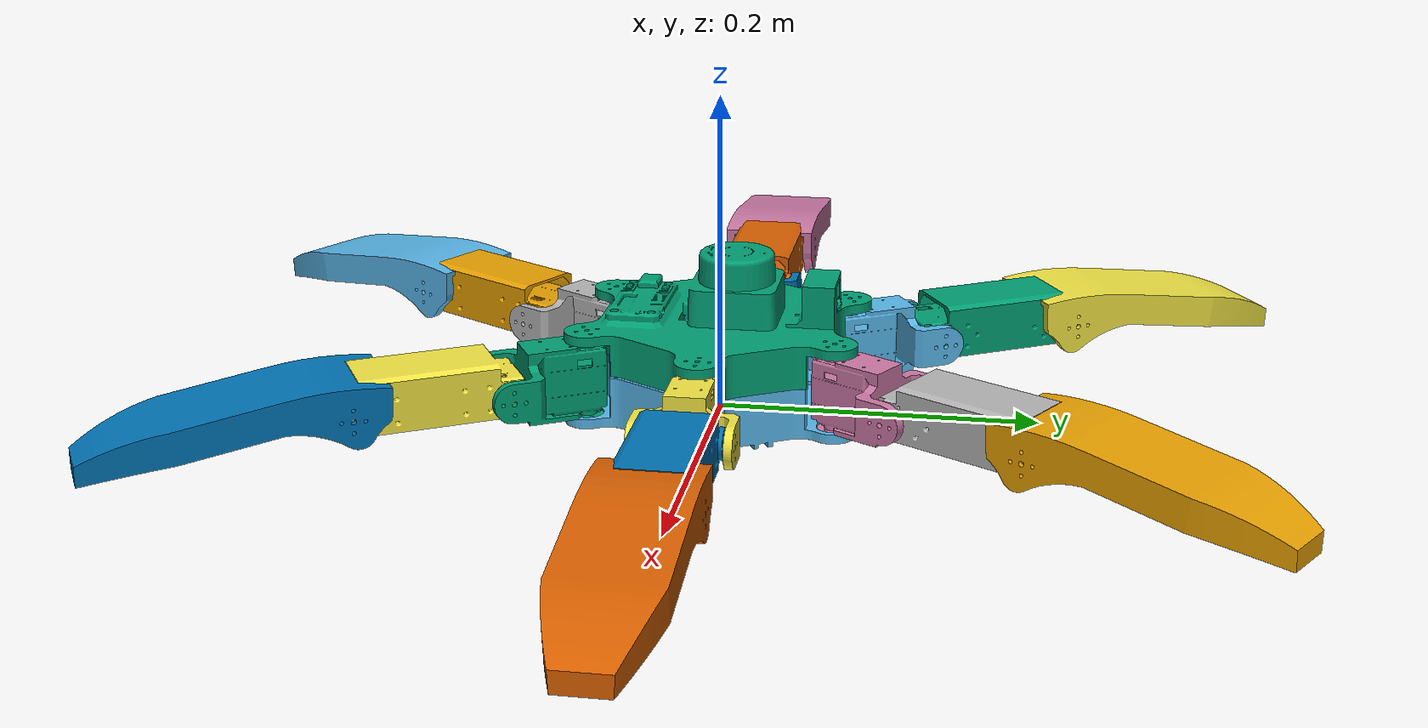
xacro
<?xml version="1.0"?>
<robot xmlns:xacro="https://wiki.ros.org/xacro" name="hexapod">

    <link name="base_footprint"></link>

    <link name="base_link">

        <inertial>
            <origin xyz="0.023017229120898014 -0.08464530203925047 0.0008889846005406454" rpy="0.0 -0.0 1.3564505168326057e-48" />
            <mass value="1.2443830690052136" />
            <inertia ixx="0.0023689215025013517" iyy="0.002416594595253303" izz="0.004668882923273096" ixy="2.5477598085071404e-05" iyz="-2.859342323275442e-07" ixz="-1.8427596792821278e-07" />
        </inertial>

        <visual>
            <origin xyz="0 0 0" rpy="0 0 0"></origin>
            <geometry>
                <mesh filename="package://hexapod_description/meshes/base_v1.STL" scale="0.001 0.001 0.001"></mesh>
            </geometry>
        </visual>

        <collision>
            <origin xyz="0 0 0" rpy="0 0 0"></origin>
            <geometry>
                <mesh filename="package://hexapod_description/meshes/base_v1.STL" scale="0.001 0.001 0.001"></mesh>
            </geometry>
        </collision>

    </link>

    <joint name="base_joint" type="fixed">
        <parent link="base_footprint"></parent>
        <child link="base_link"></child>
        <origin xyz="0 0 0" rpy="0 0 0"></origin>
    </joint>

    <link name="top_cover">

        <inertial>
            <origin xyz="0.023017229120898014 -0.08464530203925047 0.0008889846005406454" rpy="0.0 -0.0 1.3564505168326057e-48" />
            <mass value="1.2443830690052136" />
            <inertia ixx="0.0023689215025013517" iyy="0.002416594595253303" izz="0.004668882923273096" ixy="2.5477598085071404e-05" iyz="-2.859342323275442e-07" ixz="-1.8427596792821278e-07" />
        </inertial>

        <visual>
            <origin xyz="0 0 0" rpy="0 0 0"></origin>
            <geometry>
                <mesh filename="package://hexapod_description/meshes/Top_cover_v1.STL" scale="0.001 0.001 -0.001"></mesh>
            </geometry>
        </visual>

        <collision>
            <origin xyz="0 0 0" rpy="0 0 0"></origin>
            <geometry>
                <mesh filename="package://hexapod_description/meshes/Top_cover_v1.STL" scale="0.001 0.001 -0.001"></mesh>
            </geometry>
        </collision>
    </link>

    <joint name="top_cover_joint" type="fixed">
        <parent link="base_link"></parent>
        <child link="top_cover"></child>
        <origin xyz="0 0 0.0553" rpy="0 0 0"></origin>
    </joint>

    <!--LINK 1-->

    <link name="leg_1_link_1">
        <inertial>
            <origin xyz="-0.037949941928318846 -0.09744132570425558 0.03883429888507256" rpy="0.0 0.0 0.0" />
            <mass value="0.36914291072258437" />
            <inertia ixx="0.00016583494987659382" iyy="0.00012963751307110523" izz="0.00018444108683002687" ixy="-3.1348156946775304e-05" iyz="4.360609764316677e-06" ixz="2.517892227090198e-06" />
        </inertial>
        <visual>
            <origin xyz="0 0 0" rpy="0 0 0"></origin>
            <geometry>
                <mesh filename="package://hexapod_description/meshes/Link1_v1.STL" scale="-0.001 0.001 0.001"></mesh>
            </geometry>
        </visual>

        <collision>
            <origin xyz="0 0 0" rpy="0 0 0"></origin>
            <geometry>
                <mesh filename="package://hexapod_description/meshes/Link1_v1.STL" scale="-0.001 0.001 0.001"></mesh>
            </geometry>
        </collision>

    </link>

    <joint name="leg_1_link_1_joint" type="revolute">
        <parent link="base_link"></parent>
        <child link="leg_1_link_1"></child>
        <origin xyz="0.0884 0 0.056003" rpy="0 0 0"></origin>
        <axis xyz="0 0 1"></axis>
        <limit effort="100.0" lower="-0.7854" upper="0.7854" velocity="1.0"></limit>
    </joint>

    <link name="leg_1_link_2">
        <inertial>
            <origin xyz="0.03956033205668474 -0.0026359793082563333 -0.037825768790633305" rpy="0.0 8.511212647632786e-31 0.0" />
            <mass value="0.5870673755794086" />
            <inertia ixx="0.0002049978562715309" iyy="0.0008928463308917646" izz="0.0007745880375809385" ixy="6.572602663475909e-07" iyz="2.4549193540669483e-06" ixz="0.00016446227358901872" />
        </inertial>
        <visual>
            <origin xyz="0 0 0" rpy="0 0 0"></origin>
            <geometry>
                <mesh filename="package://hexapod_description/meshes/Link2_v1.STL" scale="-0.001 0.001 0.001"></mesh>
            </geometry>
        </visual>

        <collision>
            <origin xyz="0 0 0" rpy="0 0 0"></origin>
            <geometry>
                <mesh filename="package://hexapod_description/meshes/Link2_v1.STL" scale="-0.001 0.001 0.001"></mesh>
            </geometry>
        </collision>

    </link>

    <joint name="leg_1_link_2_joint" type="revolute">
        <parent link="leg_1_link_1"></parent>
        <child link="leg_1_link_2"></child>
        <origin xyz="0.055 0 -0.0230" rpy="0 0 -1.5708"></origin>
        <axis xyz="1 0 0"></axis>
        <limit effort="100.0" lower="-0.7854" upper="0.7854" velocity="1.0"></limit>
    </joint>

    <link name="leg_1_link_3">
        <inertial>
            <origin xyz="0.06853528018735762 0.005084938941100754 -0.04720409525089698" rpy="0.0 1.2890988334177766e-30 0.0" />
            <mass value="1.0486562054964048" />
            <inertia ixx="0.0005905740206741282" iyy="0.002729452593835599" izz="0.0022871203346311766" ixy="0.00020547467588970537" iyz="-5.5925273058158886e-05" ixz="0.00047479762826372745" />
        </inertial>
        <visual>
            <origin xyz="0 0 0" rpy="0 0 0"></origin>
            <geometry>
                <mesh filename="package://hexapod_description/meshes/Link3_v1.STL" scale="-0.001 0.001 -0.001"></mesh>
            </geometry>
        </visual>

        <collision>
            <origin xyz="0 0 0" rpy="0 0 0"></origin>
            <geometry>
                <mesh filename="package://hexapod_description/meshes/Link3_v1.STL" scale="-0.001 0.001 -0.001"></mesh>
            </geometry>
        </collision>

    </link>

    <joint name="leg_1_link_3_joint" type="revolute">
        <parent link="leg_1_link_2"></parent>
        <child link="leg_1_link_3"></child>
        <origin xyz="0 0.096 0" rpy="0 0 1.5708"></origin>
        <axis xyz="0 1 0"></axis>
        <limit effort="100.0" lower="0" upper="2.35619" velocity="1.0"></limit>
    </joint>

    <link name="leg_2_link_1">
        <inertial>
            <origin xyz="-0.037949941928318846 -0.09744132570425558 0.03883429888507256" rpy="0.0 0.0 0.0" />
            <mass value="0.36914291072258437" />
            <inertia ixx="0.00016583494987659382" iyy="0.00012963751307110523" izz="0.00018444108683002687" ixy="-3.1348156946775304e-05" iyz="4.360609764316677e-06" ixz="2.517892227090198e-06" />
        </inertial>
        <visual>
            <origin xyz="0 0 0" rpy="0 0 0"></origin>
            <geometry>
                <mesh filename="package://hexapod_description/meshes/Link1_v1.STL" scale="-0.001 0.001 0.001"></mesh>
            </geometry>
        </visual>

        <collision>
            <origin xyz="0 0 0" rpy="0 0 0"></origin>
            <geometry>
                <mesh filename="package://hexapod_description/meshes/Link1_v1.STL" scale="-0.001 0.001 0.001"></mesh>
            </geometry>
        </collision>

    </link>

    <joint name="leg_2_link_1_joint" type="revolute">
        <parent link="base_link"></parent>
        <child link="leg_2_link_1"></child>
        <origin xyz="0.04359 0.07621 0.056003" rpy="0 0 1.0472"></origin>
        <axis xyz="0 0 1"></axis>
        <limit effort="100.0" lower="-0.7854" upper="0.7854" velocity="1.0"></limit>
    </joint>

    <link name="leg_2_link_2">
        <inertial>
            <origin xyz="0.03956033205668474 -0.0026359793082563333 -0.037825768790633305" rpy="0.0 8.511212647632786e-31 0.0" />
            <mass value="0.5870673755794086" />
            <inertia ixx="0.0002049978562715309" iyy="0.0008928463308917646" izz="0.0007745880375809385" ixy="6.572602663475909e-07" iyz="2.4549193540669483e-06" ixz="0.00016446227358901872" />
        </inertial>
        <visual>
            <origin xyz="0 0 0" rpy="0 0 0"></origin>
            <geometry>
                <mesh filename="package://hexapod_description/meshes/Link2_v1.STL" scale="-0.001 0.001 0.001"></mesh>
            </geometry>
        </visual>

        <collision>
            <origin xyz="0 0 0" rpy="0 0 0"></origin>
            <geometry>
                <mesh filename="package://hexapod_description/meshes/Link2_v1.STL" scale="-0.001 0.001 0.001"></mesh>
            </geometry>
        </collision>

    </link>

    <joint name="leg_2_link_2_joint" type="revolute">
        <parent link="leg_2_link_1"></parent>
        <child link="leg_2_link_2"></child>
        <origin xyz="0.055 0 -0.0230" rpy="0 0 -1.5708"></origin>
        <axis xyz="1 0 0"></axis>
        <limit effort="100.0" lower="-0.7854" upper="0.7854" velocity="1.0"></limit>
    </joint>

    <link name="leg_2_link_3">
        <inertial>
            <origin xyz="0.06853528018735762 0.005084938941100754 -0.04720409525089698" rpy="0.0 1.2890988334177766e-30 0.0" />
            <mass value="1.0486562054964048" />
            <inertia ixx="0.0005905740206741282" iyy="0.002729452593835599" izz="0.0022871203346311766" ixy="0.00020547467588970537" iyz="-5.5925273058158886e-05" ixz="0.00047479762826372745" />
        </inertial>
        <visual>
            <origin xyz="0 0 0" rpy="0 0 0"></origin>
            <geometry>
                <mesh filename="package://hexapod_description/meshes/Link3_v1.STL" scale="-0.001 0.001 -0.001"></mesh>
            </geometry>
        </visual>

        <collision>
            <origin xyz="0 0 0" rpy="0 0 0"></origin>
            <geometry>
                <mesh filename="package://hexapod_description/meshes/Link3_v1.STL" scale="-0.001 0.001 -0.001"></mesh>
            </geometry>
        </collision>

    </link>

    <joint name="leg_2_link_3_joint" type="revolute">
        <parent link="leg_2_link_2"></parent>
        <child link="leg_2_link_3"></child>
        <origin xyz="0 0.096 0" rpy="0 0 1.5708"></origin>
        <axis xyz="0 1 0"></axis>
        <limit effort="100.0" lower="0" upper="2.35619" velocity="1.0"></limit>
    </joint>

    <link name="leg_3_link_1">
        <inertial>
            <origin xyz="-0.037949941928318846 -0.09744132570425558 0.03883429888507256" rpy="0.0 0.0 0.0" />
            <mass value="0.36914291072258437" />
            <inertia ixx="0.00016583494987659382" iyy="0.00012963751307110523" izz="0.00018444108683002687" ixy="-3.1348156946775304e-05" iyz="4.360609764316677e-06" ixz="2.517892227090198e-06" />
        </inertial>
        <visual>
            <origin xyz="0 0 0" rpy="0 0 0"></origin>
            <geometry>
                <mesh filename="package://hexapod_description/meshes/Link1_v1.STL" scale="-0.001 0.001 0.001"></mesh>
            </geometry>
        </visual>

        <collision>
            <origin xyz="0 0 0" rpy="0 0 0"></origin>
            <geometry>
                <mesh filename="package://hexapod_description/meshes/Link1_v1.STL" scale="-0.001 0.001 0.001"></mesh>
            </geometry>
        </collision>

    </link>

    <joint name="leg_3_link_1_joint" type="revolute">
        <parent link="base_link"></parent>
        <child link="leg_3_link_1"></child>
        <origin xyz="-0.04359 0.07621 0.056003" rpy="0 0 2.094399"></origin>
        <axis xyz="0 0 1"></axis>
        <limit effort="100.0" lower="-0.7854" upper="0.7854" velocity="1.0"></limit>
    </joint>

    <link name="leg_3_link_2">
        <inertial>
            <origin xyz="0.03956033205668474 -0.0026359793082563333 -0.037825768790633305" rpy="0.0 8.511212647632786e-31 0.0" />
            <mass value="0.5870673755794086" />
            <inertia ixx="0.0002049978562715309" iyy="0.0008928463308917646" izz="0.0007745880375809385" ixy="6.572602663475909e-07" iyz="2.4549193540669483e-06" ixz="0.00016446227358901872" />
        </inertial>
        <visual>
            <origin xyz="0 0 0" rpy="0 0 0"></origin>
            <geometry>
                <mesh filename="package://hexapod_description/meshes/Link2_v1.STL" scale="-0.001 0.001 0.001"></mesh>
            </geometry>
        </visual>

        <collision>
            <origin xyz="0 0 0" rpy="0 0 0"></origin>
            <geometry>
                <mesh filename="package://hexapod_description/meshes/Link2_v1.STL" scale="-0.001 0.001 0.001"></mesh>
            </geometry>
        </collision>

    </link>

    <joint name="leg_3_link_2_joint" type="revolute">
        <parent link="leg_3_link_1"></parent>
        <child link="leg_3_link_2"></child>
        <origin xyz="0.055 0 -0.0230" rpy="0 0 -1.5708"></origin>
        <axis xyz="1 0 0"></axis>
        <limit effort="100.0" lower="-0.7854" upper="0.7854" velocity="1.0"></limit>
    </joint>

    <link name="leg_3_link_3">
        <inertial>
            <origin xyz="0.06853528018735762 0.005084938941100754 -0.04720409525089698" rpy="0.0 1.2890988334177766e-30 0.0" />
            <mass value="1.0486562054964048" />
            <inertia ixx="0.0005905740206741282" iyy="0.002729452593835599" izz="0.0022871203346311766" ixy="0.00020547467588970537" iyz="-5.5925273058158886e-05" ixz="0.00047479762826372745" />
        </inertial>
        <visual>
            <origin xyz="0 0 0" rpy="0 0 0"></origin>
            <geometry>
                <mesh filename="package://hexapod_description/meshes/Link3_v1.STL" scale="-0.001 0.001 -0.001"></mesh>
            </geometry>
        </visual>

        <collision>
            <origin xyz="0 0 0" rpy="0 0 0"></origin>
            <geometry>
                <mesh filename="package://hexapod_description/meshes/Link3_v1.STL" scale="-0.001 0.001 -0.001"></mesh>
            </geometry>
        </collision>

    </link>

    <joint name="leg_3_link_3_joint" type="revolute">
        <parent link="leg_3_link_2"></parent>
        <child link="leg_3_link_3"></child>
        <origin xyz="0 0.096 0" rpy="0 0 1.5708"></origin>
        <axis xyz="0 1 0"></axis>
        <limit effort="100.0" lower="0" upper="2.35619" velocity="1.0"></limit>
    </joint>

    <link name="leg_4_link_1">
        <inertial>
            <origin xyz="-0.037949941928318846 -0.09744132570425558 0.03883429888507256" rpy="0.0 0.0 0.0" />
            <mass value="0.36914291072258437" />
            <inertia ixx="0.00016583494987659382" iyy="0.00012963751307110523" izz="0.00018444108683002687" ixy="-3.1348156946775304e-05" iyz="4.360609764316677e-06" ixz="2.517892227090198e-06" />
        </inertial>
        <visual>
            <origin xyz="0 0 0" rpy="0 0 0"></origin>
            <geometry>
                <mesh filename="package://hexapod_description/meshes/Link1_v1.STL" scale="0.001 0.001 0.001"></mesh>
            </geometry>
        </visual>

        <collision>
            <origin xyz="0 0 0" rpy="0 0 0"></origin>
            <geometry>
                <mesh filename="package://hexapod_description/meshes/Link1_v1.STL" scale="0.001 0.001 0.001"></mesh>
            </geometry>
        </collision>

    </link>

    <joint name="leg_4_link_1_joint" type="revolute">
        <parent link="base_link"></parent>
        <child link="leg_4_link_1"></child>
        <origin xyz="-0.0884 0 0.056003" rpy="0 0 0"></origin>
        <axis xyz="0 0 1"></axis>
        <limit effort="100.0" lower="-0.7854" upper="0.7854" velocity="1.0"></limit>
    </joint>

    <link name="leg_4_link_2">
        <inertial>
            <origin xyz="0.03956033205668474 -0.0026359793082563333 -0.037825768790633305" rpy="0.0 8.511212647632786e-31 0.0" />
            <mass value="0.5870673755794086" />
            <inertia ixx="0.0002049978562715309" iyy="0.0008928463308917646" izz="0.0007745880375809385" ixy="6.572602663475909e-07" iyz="2.4549193540669483e-06" ixz="0.00016446227358901872" />
        </inertial>
        <visual>
            <origin xyz="0 0 0" rpy="0 0 0"></origin>
            <geometry>
                <mesh filename="package://hexapod_description/meshes/Link2_v1.STL" scale="0.001 0.001 0.001"></mesh>
            </geometry>
        </visual>

        <collision>
            <origin xyz="0 0 0" rpy="0 0 0"></origin>
            <geometry>
                <mesh filename="package://hexapod_description/meshes/Link2_v1.STL" scale="0.001 0.001 0.001"></mesh>
            </geometry>
        </collision>

    </link>

    <joint name="leg_4_link_2_joint" type="revolute">
        <parent link="leg_4_link_1"></parent>
        <child link="leg_4_link_2"></child>
        <origin xyz="-0.055 0 -0.0230" rpy="0 0 1.5708"></origin>
        <axis xyz="1 0 0"></axis>
        <limit effort="100.0" lower="-0.7854" upper="0.7854" velocity="1.0"></limit>
    </joint>

    <link name="leg_4_link_3">
        <inertial>
            <origin xyz="0.06853528018735762 0.005084938941100754 -0.04720409525089698" rpy="0.0 1.2890988334177766e-30 0.0" />
            <mass value="1.0486562054964048" />
            <inertia ixx="0.0005905740206741282" iyy="0.002729452593835599" izz="0.0022871203346311766" ixy="0.00020547467588970537" iyz="-5.5925273058158886e-05" ixz="0.00047479762826372745" />
        </inertial>
        <visual>
            <origin xyz="0 0 0" rpy="0 0 0"></origin>
            <geometry>
                <mesh filename="package://hexapod_description/meshes/Link3_v1.STL" scale="-0.001 0.001 -0.001"></mesh>
            </geometry>
        </visual>

        <collision>
            <origin xyz="0 0 0" rpy="0 0 0"></origin>
            <geometry>
                <mesh filename="package://hexapod_description/meshes/Link3_v1.STL" scale="-0.001 0.001 -0.001"></mesh>
            </geometry>
        </collision>

    </link>

    <joint name="leg_4_link_3_joint" type="revolute">
        <parent link="leg_4_link_2"></parent>
        <child link="leg_4_link_3"></child>
        <origin xyz="0 0.096 0" rpy="0 0 1.5708"></origin>
        <axis xyz="0 1 0"></axis>
        <limit effort="100.0" lower="0" upper="2.35619" velocity="1.0"></limit>
    </joint>

    <link name="leg_5_link_1">
        <inertial>
            <origin xyz="-0.037949941928318846 -0.09744132570425558 0.03883429888507256" rpy="0.0 0.0 0.0" />
            <mass value="0.36914291072258437" />
            <inertia ixx="0.00016583494987659382" iyy="0.00012963751307110523" izz="0.00018444108683002687" ixy="-3.1348156946775304e-05" iyz="4.360609764316677e-06" ixz="2.517892227090198e-06" />
        </inertial>
        <visual>
            <origin xyz="0 0 0" rpy="0 0 0"></origin>
            <geometry>
                <mesh filename="package://hexapod_description/meshes/Link1_v1.STL" scale="-0.001 0.001 0.001"></mesh>
            </geometry>
        </visual>

        <collision>
            <origin xyz="0 0 0" rpy="0 0 0"></origin>
            <geometry>
                <mesh filename="package://hexapod_description/meshes/Link1_v1.STL" scale="-0.001 0.001 0.001"></mesh>
            </geometry>
        </collision>

    </link>

    <joint name="leg_5_link_1_joint" type="revolute">
        <parent link="base_link"></parent>
        <child link="leg_5_link_1"></child>
        <origin xyz="-0.04359 -0.07621 0.056003" rpy="0 0 -2.094399"></origin>
        <axis xyz="0 0 1"></axis>
        <limit effort="100.0" lower="-0.7854" upper="0.7854" velocity="1.0"></limit>
    </joint>

    <link name="leg_5_link_2">
        <inertial>
            <origin xyz="0.03956033205668474 -0.0026359793082563333 -0.037825768790633305" rpy="0.0 8.511212647632786e-31 0.0" />
            <mass value="0.5870673755794086" />
            <inertia ixx="0.0002049978562715309" iyy="0.0008928463308917646" izz="0.0007745880375809385" ixy="6.572602663475909e-07" iyz="2.4549193540669483e-06" ixz="0.00016446227358901872" />
        </inertial>
        <visual>
            <origin xyz="0 0 0" rpy="0 0 0"></origin>
            <geometry>
                <mesh filename="package://hexapod_description/meshes/Link2_v1.STL" scale="-0.001 0.001 0.001"></mesh>
            </geometry>
        </visual>

        <collision>
            <origin xyz="0 0 0" rpy="0 0 0"></origin>
            <geometry>
                <mesh filename="package://hexapod_description/meshes/Link2_v1.STL" scale="-0.001 0.001 0.001"></mesh>
            </geometry>
        </collision>

    </link>

    <joint name="leg_5_link_2_joint" type="revolute">
        <parent link="leg_5_link_1"></parent>
        <child link="leg_5_link_2"></child>
        <origin xyz="0.055 0 -0.0230" rpy="0 0 -1.5708"></origin>
        <axis xyz="1 0 0"></axis>
        <limit effort="100.0" lower="-0.7854" upper="0.7854" velocity="1.0"></limit>
    </joint>

    <link name="leg_5_link_3">
        <inertial>
            <origin xyz="0.06853528018735762 0.005084938941100754 -0.04720409525089698" rpy="0.0 1.2890988334177766e-30 0.0" />
            <mass value="1.0486562054964048" />
            <inertia ixx="0.0005905740206741282" iyy="0.002729452593835599" izz="0.0022871203346311766" ixy="0.00020547467588970537" iyz="-5.5925273058158886e-05" ixz="0.00047479762826372745" />
        </inertial>
        <visual>
            <origin xyz="0 0 0" rpy="0 0 0"></origin>
            <geometry>
                <mesh filename="package://hexapod_description/meshes/Link3_v1.STL" scale="-0.001 0.001 -0.001"></mesh>
            </geometry>
        </visual>

        <collision>
            <origin xyz="0 0 0" rpy="0 0 0"></origin>
            <geometry>
                <mesh filename="package://hexapod_description/meshes/Link3_v1.STL" scale="-0.001 0.001 -0.001"></mesh>
            </geometry>
        </collision>

    </link>

    <joint name="leg_5_link_3_joint" type="revolute">
        <parent link="leg_5_link_2"></parent>
        <child link="leg_5_link_3"></child>
        <origin xyz="0 0.096 0" rpy="0 0 1.5708"></origin>
        <axis xyz="0 1 0"></axis>
        <limit effort="100.0" lower="0" upper="2.35619" velocity="1.0"></limit>
    </joint>

    <link name="leg_6_link_1">
        <inertial>
            <origin xyz="-0.037949941928318846 -0.09744132570425558 0.03883429888507256" rpy="0.0 0.0 0.0" />
            <mass value="0.36914291072258437" />
            <inertia ixx="0.00016583494987659382" iyy="0.00012963751307110523" izz="0.00018444108683002687" ixy="-3.1348156946775304e-05" iyz="4.360609764316677e-06" ixz="2.517892227090198e-06" />
        </inertial>
        <visual>
            <origin xyz="0 0 0" rpy="0 0 0"></origin>
            <geometry>
                <mesh filename="package://hexapod_description/meshes/Link1_v1.STL" scale="-0.001 0.001 0.001"></mesh>
            </geometry>
        </visual>

        <collision>
            <origin xyz="0 0 0" rpy="0 0 0"></origin>
            <geometry>
                <mesh filename="package://hexapod_description/meshes/Link1_v1.STL" scale="-0.001 0.001 0.001"></mesh>
            </geometry>
        </collision>

    </link>

    <joint name="leg_6_link_1_joint" type="revolute">
        <parent link="base_link"></parent>
        <child link="leg_6_link_1"></child>
        <origin xyz="0.04359 -0.07621 0.056003" rpy="0 0 -1.0472"></origin>
        <axis xyz="0 0 1"></axis>
        <limit effort="100.0" lower="-0.7854" upper="0.7854" velocity="1.0"></limit>
    </joint>

    <link name="leg_6_link_2">
        <inertial>
            <origin xyz="0.03956033205668474 -0.0026359793082563333 -0.037825768790633305" rpy="0.0 8.511212647632786e-31 0.0" />
            <mass value="0.5870673755794086" />
            <inertia ixx="0.0002049978562715309" iyy="0.0008928463308917646" izz="0.0007745880375809385" ixy="6.572602663475909e-07" iyz="2.4549193540669483e-06" ixz="0.00016446227358901872" />
        </inertial>
        <visual>
            <origin xyz="0 0 0" rpy="0 0 0"></origin>
            <geometry>
                <mesh filename="package://hexapod_description/meshes/Link2_v1.STL" scale="-0.001 0.001 0.001"></mesh>
            </geometry>
        </visual>

        <collision>
            <origin xyz="0 0 0" rpy="0 0 0"></origin>
            <geometry>
                <mesh filename="package://hexapod_description/meshes/Link2_v1.STL" scale="-0.001 0.001 0.001"></mesh>
            </geometry>
        </collision>

    </link>

    <joint name="leg_6_link_2_joint" type="revolute">
        <parent link="leg_6_link_1"></parent>
        <child link="leg_6_link_2"></child>
        <origin xyz="0.055 0 -0.0230" rpy="0 0 -1.5708"></origin>
        <axis xyz="1 0 0"></axis>
        <limit effort="100.0" lower="-0.7854" upper="0.7854" velocity="1.0"></limit>
    </joint>

    <link name="leg_6_link_3">
        <inertial>
            <origin xyz="0.06853528018735762 0.005084938941100754 -0.04720409525089698" rpy="0.0 1.2890988334177766e-30 0.0" />
            <mass value="1.0486562054964048" />
            <inertia ixx="0.0005905740206741282" iyy="0.002729452593835599" izz="0.0022871203346311766" ixy="0.00020547467588970537" iyz="-5.5925273058158886e-05" ixz="0.00047479762826372745" />
        </inertial>
        <visual>
            <origin xyz="0 0 0" rpy="0 0 0"></origin>
            <geometry>
                <mesh filename="package://hexapod_description/meshes/Link3_v1.STL" scale="-0.001 0.001 -0.001"></mesh>
            </geometry>
        </visual>

        <collision>
            <origin xyz="0 0 0" rpy="0 0 0"></origin>
            <geometry>
                <mesh filename="package://hexapod_description/meshes/Link3_v1.STL" scale="-0.001 0.001 -0.001"></mesh>
            </geometry>
        </collision>

    </link>

    <joint name="leg_6_link_3_joint" type="revolute">
        <parent link="leg_6_link_2"></parent>
        <child link="leg_6_link_3"></child>
        <origin xyz="0 0.096 0" rpy="0 0 1.5708"></origin>
        <axis xyz="0 1 0"></axis>
        <limit effort="100.0" lower="0" upper="2.35619" velocity="1.0"></limit>
    </joint>

    <!-- gazebo references-->

    <gazebo reference="leg_1_link_1">
        <mu1>1000000000000000000000000000000.0</mu1>
        <mu2>1000000000000000000000000000000.0</mu2>
        <kp>1000000000000000000000000000000.0</kp>
        <kd>10.0</kd>
    </gazebo>
    <gazebo reference="leg_1_link_2">
        <mu1>1000000000000000000000000000000.0</mu1>
        <mu2>1000000000000000000000000000000.0</mu2>
        <kp>1000000000000000000000000000000.0</kp>
        <kd>10.0</kd>
    </gazebo>
    <gazebo reference="leg_1_link_3">
        <mu1>1000000000000000000000000000000.0</mu1>
        <mu2>1000000000000000000000000000000.0</mu2>
        <kp>1000000000000000000000000000000.0</kp>
        <kd>10.0</kd>
    </gazebo>
    <gazebo reference="leg_2_link_1">
        <mu1>1000000000000000000000000000000.0</mu1>
        <mu2>1000000000000000000000000000000.0</mu2>
        <kp>1000000000000000000000000000000.0</kp>
        <kd>10.0</kd>
    </gazebo>
    <gazebo reference="leg_2_link_2">
        <mu1>1000000000000000000000000000000.0</mu1>
        <mu2>1000000000000000000000000000000.0</mu2>
        <kp>1000000000000000000000000000000.0</kp>
        <kd>10.0</kd>
    </gazebo>
    <gazebo reference="leg_2_link_3">
        <mu1>1000000000000000000000000000000.0</mu1>
        <mu2>1000000000000000000000000000000.0</mu2>
        <kp>1000000000000000000000000000000.0</kp>
        <kd>10.0</kd>
    </gazebo>
    <gazebo reference="leg_3_link_1">
        <mu1>1000000000000000000000000000000.0</mu1>
        <mu2>1000000000000000000000000000000.0</mu2>
        <kp>1000000000000000000000000000000.0</kp>
        <kd>10.0</kd>
    </gazebo>
    <gazebo reference="leg_3_link_2">
        <mu1>1000000000000000000000000000000.0</mu1>
        <mu2>1000000000000000000000000000000.0</mu2>
        <kp>1000000000000000000000000000000.0</kp>
        <kd>10.0</kd>
    </gazebo>
    <gazebo reference="leg_3_link_3">
        <mu1>1000000000000000000000000000000.0</mu1>
        <mu2>1000000000000000000000000000000.0</mu2>
        <kp>1000000000000000000000000000000.0</kp>
        <kd>10.0</kd>
    </gazebo>
    <gazebo reference="leg_4_link_1">
        <mu1>1000000000000000000000000000000.0</mu1>
        <mu2>1000000000000000000000000000000.0</mu2>
        <kp>1000000000000000000000000000000.0</kp>
        <kd>10.0</kd>
    </gazebo>
    <gazebo reference="leg_4_link_2">
        <mu1>1000000000000000000000000000000.0</mu1>
        <mu2>1000000000000000000000000000000.0</mu2>
        <kp>1000000000000000000000000000000.0</kp>
        <kd>10.0</kd>
    </gazebo>
    <gazebo reference="leg_4_link_3">
        <mu1>1000000000000000000000000000000.0</mu1>
        <mu2>1000000000000000000000000000000.0</mu2>
        <kp>1000000000000000000000000000000.0</kp>
        <kd>10.0</kd>
    </gazebo>
    <gazebo reference="leg_5_link_1">
        <mu1>1000000000000000000000000000000.0</mu1>
        <mu2>1000000000000000000000000000000.0</mu2>
        <kp>1000000000000000000000000000000.0</kp>
        <kd>10.0</kd>
    </gazebo>
    <gazebo reference="leg_5_link_2">
        <mu1>1000000000000000000000000000000.0</mu1>
        <mu2>1000000000000000000000000000000.0</mu2>
        <kp>1000000000000000000000000000000.0</kp>
        <kd>10.0</kd>
    </gazebo>
    <gazebo reference="leg_5_link_3">
        <mu1>1000000000000000000000000000000.0</mu1>
        <mu2>1000000000000000000000000000000.0</mu2>
        <kp>1000000000000000000000000000000.0</kp>
        <kd>10.0</kd>
    </gazebo>
    <gazebo reference="leg_6_link_1">
        <mu1>1000000000000000000000000000000.0</mu1>
        <mu2>1000000000000000000000000000000.0</mu2>
        <kp>1000000000000000000000000000000.0</kp>
        <kd>10.0</kd>
    </gazebo>
    <gazebo reference="leg_6_link_2">
        <mu1>1000000000000000000000000000000.0</mu1>
        <mu2>1000000000000000000000000000000.0</mu2>
        <kp>1000000000000000000000000000000.0</kp>
        <kd>10.0</kd>
    </gazebo>
    <gazebo reference="leg_6_link_3">
        <mu1>1000000000000000000000000000000.0</mu1>
        <mu2>1000000000000000000000000000000.0</mu2>
        <kp>1000000000000000000000000000000.0</kp>
        <kd>10.0</kd>
    </gazebo>

</robot>
